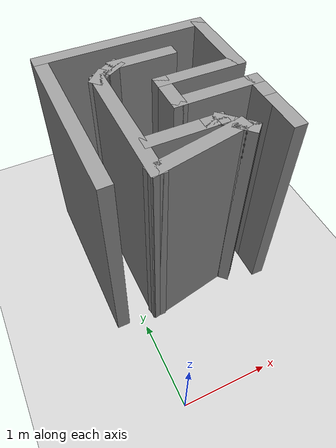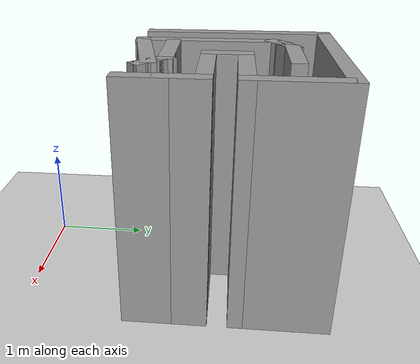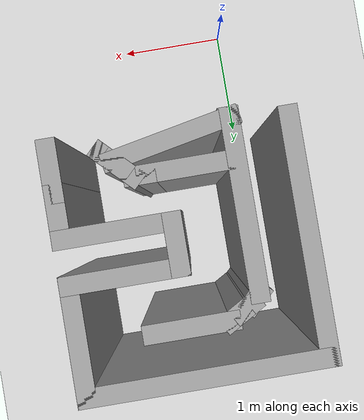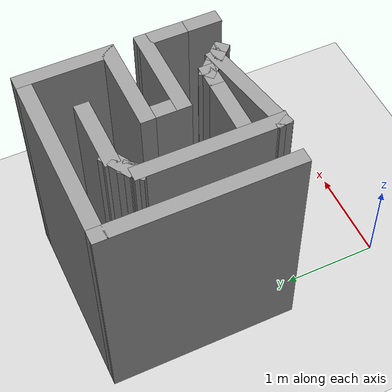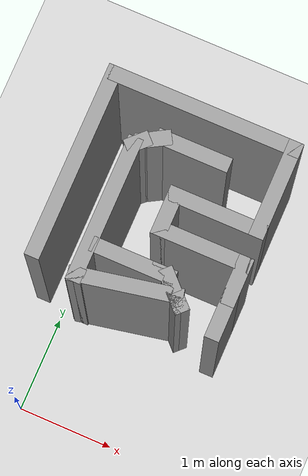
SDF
<sdf version="1.6">
 <world name="default">
  <light name="sun" type="directional">
   <pose>0 0 10 0 -0 0</pose>
   <diffuse>0.8 0.8 0.8 1</diffuse>
   <specular>0.1 0.1 0.1 1</specular>
   <attenuation>
    <range>1000</range>
    <constant>0.9</constant>
    <linear>0.01</linear>
    <quadratic>0.001</quadratic>
   </attenuation>
   <direction>-0.5 0.5 -1</direction>
  </light>
  <model name="ground_plane">
   <static>1</static>
   <link name="link">
    <collision name="collision">
     <geometry><plane><normal>0 0 1</normal><size>100 100</size></plane></geometry>
     <surface><friction><ode><mu>100</mu><mu2>50</mu2></ode></friction></surface>
    </collision>
    <visual name="visual">
     <cast_shadows>0</cast_shadows>
     <geometry><plane><normal>0 0 1</normal><size>100 100</size></plane></geometry>
     <material>
      <script><uri>file://media/materials/scripts/gazebo.material</uri><name>Gazebo/Grey</name></script>
     </material>
    </visual>
   </link>
  </model>
  <gravity>0 0 -9.8</gravity>
  <magnetic_field>6e-06 2.3e-05 -4.2e-05</magnetic_field>
  <atmosphere type="adiabatic"/>
  <physics name="default_physics" default="0" type="ode">
   <max_step_size>0.001</max_step_size>
   <real_time_factor>1</real_time_factor>
   <real_time_update_rate>1000</real_time_update_rate>
  </physics>
  <scene><ambient>0.4 0.4 0.4 1</ambient><background>0.7 0.7 0.7 1</background><shadows>1</shadows></scene>
  <spherical_coordinates>
   <surface_model>EARTH_WGS84</surface_model>
   <latitude_deg>0</latitude_deg>
   <longitude_deg>0</longitude_deg>
   <elevation>0</elevation>
   <heading_deg>0</heading_deg>
  </spherical_coordinates>
  <model name="Maze2">
   <pose>0.683551 2.09873 0 0 -0 0</pose>
   <link name="Wall_0">
    <collision name="Wall_0_Collision">
     <geometry><box><size>2 0.15 2.5</size></box></geometry>
     <pose>0 0 1.25 0 -0 0</pose>
    </collision>
    <visual name="Wall_0_Visual">
     <pose>0 0 1.25 0 -0 0</pose>
     <geometry><box><size>2 0.15 2.5</size></box></geometry>
     <material>
      <script><uri>file://media/materials/scripts/gazebo.material</uri><name>Gazebo/Grey</name></script>
      <ambient>1 1 1 1</ambient>
     </material>
    </visual>
    <pose>-0.925 0.036764 0 0 -0 1.5708</pose>
   </link>
   <link name="Wall_1">
    <collision name="Wall_1_Collision">
     <geometry><box><size>2 0.15 2.5</size></box></geometry>
     <pose>0 0 1.25 0 -0 0</pose>
    </collision>
    <visual name="Wall_1_Visual">
     <pose>0 0 1.25 0 -0 0</pose>
     <geometry><box><size>2 0.15 2.5</size></box></geometry>
     <material>
      <script><uri>file://media/materials/scripts/gazebo.material</uri><name>Gazebo/Grey</name></script>
      <ambient>1 1 1 1</ambient>
     </material>
    </visual>
    <pose>0 0.961764 0 0 -0 0</pose>
   </link>
   <link name="Wall_10">
    <collision name="Wall_10_Collision">
     <geometry><box><size>1.5 0.15 2.5</size></box></geometry>
     <pose>0 0 1.25 0 -0 0</pose>
    </collision>
    <visual name="Wall_10_Visual">
     <pose>0 0 1.25 0 -0 0</pose>
     <geometry><box><size>1.5 0.15 2.5</size></box></geometry>
     <material>
      <script><uri>file://media/materials/scripts/gazebo.material</uri><name>Gazebo/Grey</name></script>
      <ambient>1 1 1 1</ambient>
     </material>
    </visual>
    <pose>-0.481514 -0.273642 0 0 -0 1.5708</pose>
   </link>
   <link name="Wall_11">
    <collision name="Wall_11_Collision">
     <geometry><box><size>0.25 0.15 2.5</size></box></geometry>
     <pose>0 0 1.25 0 -0 0</pose>
    </collision>
    <visual name="Wall_11_Visual">
     <pose>0 0 1.25 0 -0 0</pose>
     <geometry><box><size>0.25 0.15 2.5</size></box></geometry>
     <material>
      <script><uri>file://media/materials/scripts/gazebo.material</uri><name>Gazebo/Grey</name></script>
      <ambient>1 1 1 1</ambient>
     </material>
    </visual>
    <pose>-0.446159 0.436713 0 0 -0 0.785398</pose>
   </link>
   <link name="Wall_12">
    <collision name="Wall_12_Collision">
     <geometry><box><size>0.25 0.15 2.5</size></box></geometry>
     <pose>0 0 1.25 0 -0 0</pose>
    </collision>
    <visual name="Wall_12_Visual">
     <pose>0 0 1.25 0 -0 0</pose>
     <geometry><box><size>0.25 0.15 2.5</size></box></geometry>
     <material>
      <script><uri>file://media/materials/scripts/gazebo.material</uri><name>Gazebo/Grey</name></script>
      <ambient>1 1 1 1</ambient>
     </material>
    </visual>
    <pose>-0.367502 0.497069 0 0 -0 0.523599</pose>
   </link>
   <link name="Wall_13">
    <collision name="Wall_13_Collision">
     <geometry><box><size>0.25 0.15 2.5</size></box></geometry>
     <pose>0 0 1.25 0 -0 0</pose>
    </collision>
    <visual name="Wall_13_Visual">
     <pose>0 0 1.25 0 -0 0</pose>
     <geometry><box><size>0.25 0.15 2.5</size></box></geometry>
     <material>
      <script><uri>file://media/materials/scripts/gazebo.material</uri><name>Gazebo/Grey</name></script>
      <ambient>1 1 1 1</ambient>
     </material>
    </visual>
    <pose>-0.280899 0.547069 0 0 -0 0.523599</pose>
   </link>
   <link name="Wall_14">
    <collision name="Wall_14_Collision">
     <geometry><box><size>0.75 0.15 2.5</size></box></geometry>
     <pose>0 0 1.25 0 -0 0</pose>
    </collision>
    <visual name="Wall_14_Visual">
     <pose>0 0 1.25 0 -0 0</pose>
     <geometry><box><size>0.75 0.15 2.5</size></box></geometry>
     <material>
      <script><uri>file://media/materials/scripts/gazebo.material</uri><name>Gazebo/Grey</name></script>
      <ambient>1 1 1 1</ambient>
     </material>
    </visual>
    <pose>0.062402 0.572069 0 0 -0 0</pose>
   </link>
   <link name="Wall_17">
    <collision name="Wall_17_Collision">
     <geometry><box><size>0.75 0.15 2.5</size></box></geometry>
     <pose>0 0 1.25 0 -0 0</pose>
    </collision>
    <visual name="Wall_17_Visual">
     <pose>0 0 1.25 0 -0 0</pose>
     <geometry><box><size>0.75 0.15 2.5</size></box></geometry>
     <material>
      <script><uri>file://media/materials/scripts/gazebo.material</uri><name>Gazebo/Grey</name></script>
      <ambient>1 1 1 1</ambient>
     </material>
    </visual>
    <pose>-0.086144 -0.622003 0 0 -0 3.14159</pose>
   </link>
   <link name="Wall_19">
    <collision name="Wall_19_Collision">
     <geometry><box><size>0.25 0.15 2.5</size></box></geometry>
     <pose>0 0 1.25 0 -0 0</pose>
    </collision>
    <visual name="Wall_19_Visual">
     <pose>0 0 1.25 0 -0 0</pose>
     <geometry><box><size>0.25 0.15 2.5</size></box></geometry>
     <material>
      <script><uri>file://media/materials/scripts/gazebo.material</uri><name>Gazebo/Grey</name></script>
      <ambient>1 1 1 1</ambient>
     </material>
    </visual>
    <pose>0.263856 -0.622003 0 0 -0 0</pose>
   </link>
   <link name="Wall_2">
    <collision name="Wall_2_Collision">
     <geometry><box><size>1 0.15 2.5</size></box></geometry>
     <pose>0 0 1.25 0 -0 0</pose>
    </collision>
    <visual name="Wall_2_Visual">
     <pose>0 0 1.25 0 -0 0</pose>
     <geometry><box><size>1 0.15 2.5</size></box></geometry>
     <material>
      <script><uri>file://media/materials/scripts/gazebo.material</uri><name>Gazebo/Grey</name></script>
      <ambient>1 1 1 1</ambient>
     </material>
    </visual>
    <pose>0.925 0.536764 0 0 0 -1.5708</pose>
   </link>
   <link name="Wall_20">
    <collision name="Wall_20_Collision">
     <geometry><box><size>0.25 0.15 2.5</size></box></geometry>
     <pose>0 0 1.25 0 -0 0</pose>
    </collision>
    <visual name="Wall_20_Visual">
     <pose>0 0 1.25 0 -0 0</pose>
     <geometry><box><size>0.25 0.15 2.5</size></box></geometry>
     <material>
      <script><uri>file://media/materials/scripts/gazebo.material</uri><name>Gazebo/Grey</name></script>
      <ambient>1 1 1 1</ambient>
     </material>
    </visual>
    <pose>0.349211 -0.657358 0 0 0 -0.785398</pose>
   </link>
   <link name="Wall_21">
    <collision name="Wall_21_Collision">
     <geometry><box><size>0.25 0.15 2.5</size></box></geometry>
     <pose>0 0 1.25 0 -0 0</pose>
    </collision>
    <visual name="Wall_21_Visual">
     <pose>0 0 1.25 0 -0 0</pose>
     <geometry><box><size>0.25 0.15 2.5</size></box></geometry>
     <material>
      <script><uri>file://media/materials/scripts/gazebo.material</uri><name>Gazebo/Grey</name></script>
      <ambient>1 1 1 1</ambient>
     </material>
    </visual>
    <pose>0.419922 -0.728069 0 0 0 -0.785398</pose>
   </link>
   <link name="Wall_22">
    <collision name="Wall_22_Collision">
     <geometry><box><size>0.25 0.15 2.5</size></box></geometry>
     <pose>0 0 1.25 0 -0 0</pose>
    </collision>
    <visual name="Wall_22_Visual">
     <pose>0 0 1.25 0 -0 0</pose>
     <geometry><box><size>0.25 0.15 2.5</size></box></geometry>
     <material>
      <script><uri>file://media/materials/scripts/gazebo.material</uri><name>Gazebo/Grey</name></script>
      <ambient>1 1 1 1</ambient>
     </material>
    </visual>
    <pose>0.490633 -0.79878 0 0 0 -0.785398</pose>
   </link>
   <link name="Wall_23">
    <collision name="Wall_23_Collision">
     <geometry><box><size>0.25 0.15 2.5</size></box></geometry>
     <pose>0 0 1.25 0 -0 0</pose>
    </collision>
    <visual name="Wall_23_Visual">
     <pose>0 0 1.25 0 -0 0</pose>
     <geometry><box><size>0.25 0.15 2.5</size></box></geometry>
     <material>
      <script><uri>file://media/materials/scripts/gazebo.material</uri><name>Gazebo/Grey</name></script>
      <ambient>1 1 1 1</ambient>
     </material>
    </visual>
    <pose>0.490633 -0.79878 0 0 -0 2.35619</pose>
   </link>
   <link name="Wall_24">
    <collision name="Wall_24_Collision">
     <geometry><box><size>1.10493 0.15 2.5</size></box></geometry>
     <pose>0 0 1.25 0 -0 0</pose>
    </collision>
    <visual name="Wall_24_Visual">
     <pose>0 0 1.25 0 -0 0</pose>
     <geometry><box><size>1.10493 0.15 2.5</size></box></geometry>
     <material>
      <script><uri>file://media/materials/scripts/gazebo.material</uri><name>Gazebo/Grey</name></script>
      <ambient>1 1 1 1</ambient>
     </material>
    </visual>
    <pose>-0.013118 -0.856033 0 0 0 -2.94639</pose>
   </link>
   <link name="Wall_25">
    <collision name="Wall_25_Collision">
     <geometry><box><size>0.16 0.15 2.5</size></box></geometry>
     <pose>0 0 1.25 0 -0 0</pose>
    </collision>
    <visual name="Wall_25_Visual">
     <pose>0 0 1.25 0 -0 0</pose>
     <geometry><box><size>0.16 0.15 2.5</size></box></geometry>
     <material>
      <script><uri>file://media/materials/scripts/gazebo.material</uri><name>Gazebo/Grey</name></script>
      <ambient>1 1 1 1</ambient>
     </material>
    </visual>
    <pose>-0.476514 -0.948642 0 0 -0 0</pose>
   </link>
   <link name="Wall_3">
    <collision name="Wall_3_Collision">
     <geometry><box><size>1 0.15 2.5</size></box></geometry>
     <pose>0 0 1.25 0 -0 0</pose>
    </collision>
    <visual name="Wall_3_Visual">
     <pose>0 0 1.25 0 -0 0</pose>
     <geometry><box><size>1 0.15 2.5</size></box></geometry>
     <material>
      <script><uri>file://media/materials/scripts/gazebo.material</uri><name>Gazebo/Grey</name></script>
      <ambient>1 1 1 1</ambient>
     </material>
    </visual>
    <pose>0.5 0.111764 0 0 -0 3.14159</pose>
   </link>
   <link name="Wall_4">
    <collision name="Wall_4_Collision">
     <geometry><box><size>0.5 0.15 2.5</size></box></geometry>
     <pose>0 0 1.25 0 -0 0</pose>
    </collision>
    <visual name="Wall_4_Visual">
     <pose>0 0 1.25 0 -0 0</pose>
     <geometry><box><size>0.5 0.15 2.5</size></box></geometry>
     <material>
      <script><uri>file://media/materials/scripts/gazebo.material</uri><name>Gazebo/Grey</name></script>
      <ambient>1 1 1 1</ambient>
     </material>
    </visual>
    <pose>0.075 -0.063236 0 0 0 -1.5708</pose>
   </link>
   <link name="Wall_5">
    <collision name="Wall_5_Collision">
     <geometry><box><size>1 0.15 2.5</size></box></geometry>
     <pose>0 0 1.25 0 -0 0</pose>
    </collision>
    <visual name="Wall_5_Visual">
     <pose>0 0 1.25 0 -0 0</pose>
     <geometry><box><size>1 0.15 2.5</size></box></geometry>
     <material>
      <script><uri>file://media/materials/scripts/gazebo.material</uri><name>Gazebo/Grey</name></script>
      <ambient>1 1 1 1</ambient>
     </material>
    </visual>
    <pose>0.5 -0.238236 0 0 -0 0</pose>
   </link>
   <link name="Wall_6">
    <collision name="Wall_6_Collision">
     <geometry><box><size>0.5 0.15 2.5</size></box></geometry>
     <pose>0 0 1.25 0 -0 0</pose>
    </collision>
    <visual name="Wall_6_Visual">
     <pose>0 0 1.25 0 -0 0</pose>
     <geometry><box><size>0.5 0.15 2.5</size></box></geometry>
     <material>
      <script><uri>file://media/materials/scripts/gazebo.material</uri><name>Gazebo/Grey</name></script>
      <ambient>1 1 1 1</ambient>
     </material>
    </visual>
    <pose>0.925 -0.413236 0 0 0 -1.5708</pose>
   </link>
   <link name="Wall_7">
    <collision name="Wall_7_Collision">
     <geometry><box><size>0.5 0.15 2.5</size></box></geometry>
     <pose>0 0 1.25 0 -0 0</pose>
    </collision>
    <visual name="Wall_7_Visual">
     <pose>0 0 1.25 0 -0 0</pose>
     <geometry><box><size>0.5 0.15 2.5</size></box></geometry>
     <material>
      <script><uri>file://media/materials/scripts/gazebo.material</uri><name>Gazebo/Grey</name></script>
      <ambient>1 1 1 1</ambient>
     </material>
    </visual>
    <pose>0.925 -0.763236 0 0 0 -1.5708</pose>
   </link>
   <static>1</static>
  </model>
 </world>
</sdf>
